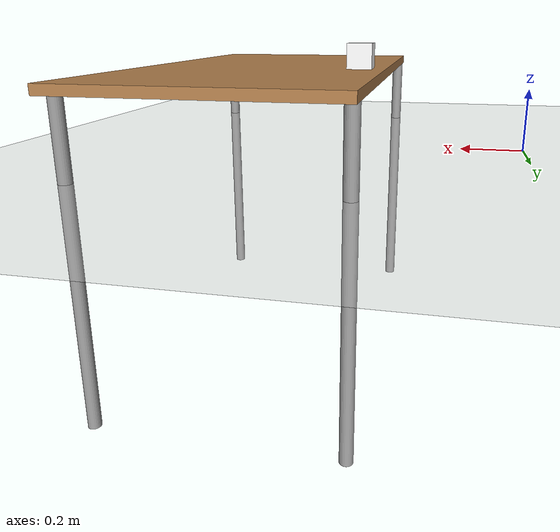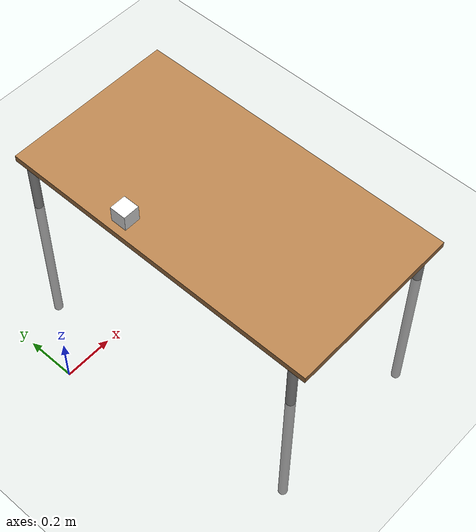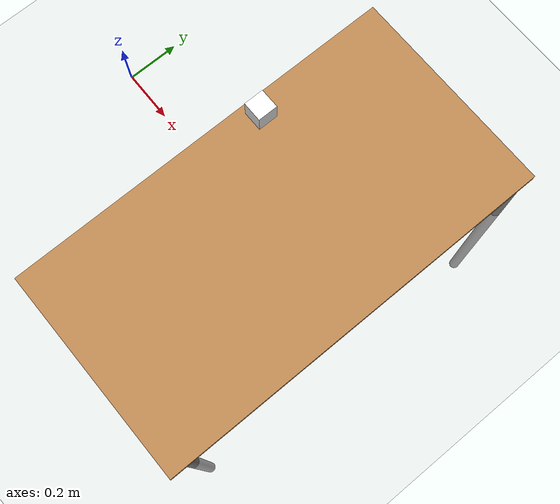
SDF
<?xml version="1.0" ?>
<sdf version="1.4">
  <world name="default">
    <include>
      <uri>model://ground_plane</uri>
    </include>
    <include>
      <uri>model://sun</uri>
    </include>
    <include>
      <uri>model://table</uri>
      <pose>0.85 0 -0.75 0 0 1.5708</pose>
      <static>true</static>
    </include>
    <include>
      <uri>model://wood_cube_7_5cm</uri>
      <pose>0.48 0.20 0.31 0 1.5708 0</pose>
      <static>false</static>
    </include>
  </world>
</sdf>

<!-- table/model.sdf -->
<sdf version="1.5">
  <model name="table">
    <static>true</static>
    <link name="link">
      <collision name="surface">
        <pose>0 0 1.0 0 0 0</pose>
        <geometry>
          <box>
            <size>1.5 0.8 0.03</size>
          </box>
        </geometry>
        <surface>
          <friction>
            <ode>
              <mu>0.6</mu>
              <mu2>0.6</mu2>
            </ode>
          </friction>
        </surface>
      </collision>
      <visual name="visual1">
        <pose>0 0 1.0 0 0 0</pose>
        <geometry>
          <box>
            <size>1.5 0.8 0.03</size>
          </box>
        </geometry>
        <material>
          <script>
            <uri>model://media/materials/scripts/gazebo.material</uri>
            <name>Gazebo/Wood</name>
          </script>
        </material>
      </visual>
      <collision name="front_left_leg">
        <pose>0.68 0.38 0.5 0 0 0</pose>
        <geometry>
          <cylinder>
            <radius>0.02</radius>
            <length>1.0</length>
          </cylinder>
        </geometry>
      </collision>
      <visual name="front_left_leg">
        <pose>0.68 0.38 0.5 0 0 0</pose>
        <geometry>
          <cylinder>
            <radius>0.02</radius>
            <length>1.0</length>
          </cylinder>
        </geometry>
        <material>
          <script>
            <uri>model://media/materials/scripts/gazebo.material</uri>
            <name>Gazebo/Grey</name>
          </script>
        </material>
      </visual>
      <collision name="front_right_leg">
        <pose>0.68 -0.38 0.5 0 0 0</pose>
        <geometry>
          <cylinder>
            <radius>0.02</radius>
            <length>1.0</length>
          </cylinder>
        </geometry>
      </collision>
      <visual name="front_right_leg">
        <pose>0.68 -0.38 0.5 0 0 0</pose>
        <geometry>
          <cylinder>
            <radius>0.02</radius>
            <length>1.0</length>
          </cylinder>
        </geometry>
        <material>
          <script>
            <uri>model://media/materials/scripts/gazebo.material</uri>
            <name>Gazebo/Grey</name>
          </script>
        </material>
      </visual>
      <collision name="back_right_leg">
        <pose>-0.68 -0.38 0.5 0 0 0</pose>
        <geometry>
          <cylinder>
            <radius>0.02</radius>
            <length>1.0</length>
          </cylinder>
        </geometry>
      </collision>
      <visual name="back_right_leg">
        <pose>-0.68 -0.38 0.5 0 0 0</pose>
        <geometry>
          <cylinder>
            <radius>0.02</radius>
            <length>1.0</length>
          </cylinder>
        </geometry>
        <material>
          <script>
            <uri>model://media/materials/scripts/gazebo.material</uri>
            <name>Gazebo/Grey</name>
          </script>
        </material>
      </visual>
      <collision name="back_left_leg">
        <pose>-0.68 0.38 0.5 0 0 0</pose>
        <geometry>
          <cylinder>
            <radius>0.02</radius>
            <length>1.0</length>
          </cylinder>
        </geometry>
      </collision>
      <visual name="back_left_leg">
        <pose>-0.68 0.38 0.5 0 0 0</pose>
        <geometry>
          <cylinder>
            <radius>0.02</radius>
            <length>1.0</length>
          </cylinder>
        </geometry>
        <material>
          <script>
            <uri>model://media/materials/scripts/gazebo.material</uri>
            <name>Gazebo/Grey</name>
          </script>
        </material>
      </visual>
    </link>
  </model>
</sdf>

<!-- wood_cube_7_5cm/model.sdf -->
<sdf version="1.5">
  <model name="wood_cube_7_5cm">
    <link name="link">
      <pose>0 0 0.0375 0 0 0</pose>
      <inertial>
        <mass>0.2249</mass>
        <inertia>
          <ixx>0.00021084374999999999</ixx>
          <ixy>0</ixy>
          <ixz>0</ixz>
          <iyy>0.00021084374999999999</iyy>
          <iyz>0</iyz>
          <izz>0.00021084374999999999</izz>
        </inertia>
      </inertial>

      <collision name="collision">
        <geometry>
          <box>
            <size>0.075 0.075 0.075</size>
          </box>
        </geometry>
        <surface>
          <contact>
            <!-- Red Pine coefficients for longitudinal axis of the wood
                 according to:
                 http://www.fpl.fs.fed.us/documnts/fplgtr/fplgtr113/ch04.pdf -->
            <poissons_ratio>0.347</poissons_ratio>
            <elastic_modulus>8.8e+09</elastic_modulus>
            <ode>
              <kp>100000</kp>
              <kd>100</kd>
              <max_vel>100.0</max_vel>
              <min_depth>0.001</min_depth>
            </ode>
          </contact>
          <friction>
            <torsional>
              <coefficient>1.0</coefficient>
              <use_patch_radius>0</use_patch_radius>
              <surface_radius>0.01</surface_radius>
            </torsional>
          </friction>
        </surface>
      </collision>

      <visual name="visual">
        <geometry>
          <box>
            <size>0.075 0.075 0.075</size>
          </box>
        </geometry>
        <material><diffuse>1 1 1 1</diffuse><specular>0.1 0.1 0.1 1</specular></material>
      </visual>

    </link>
  </model>
</sdf>
